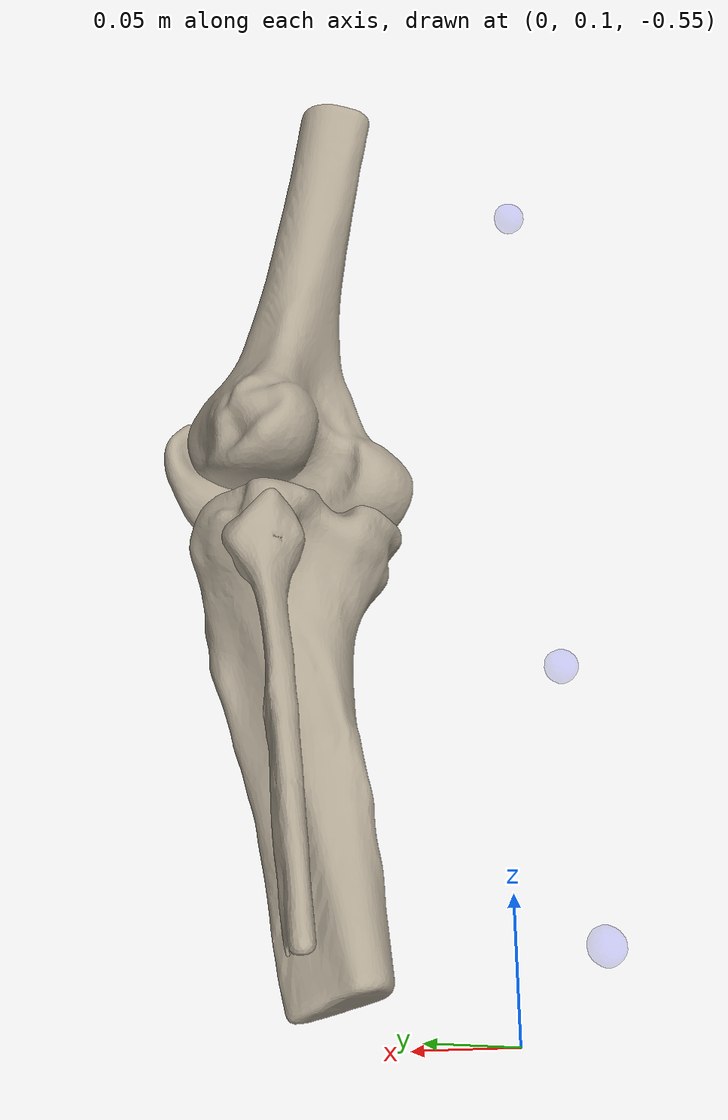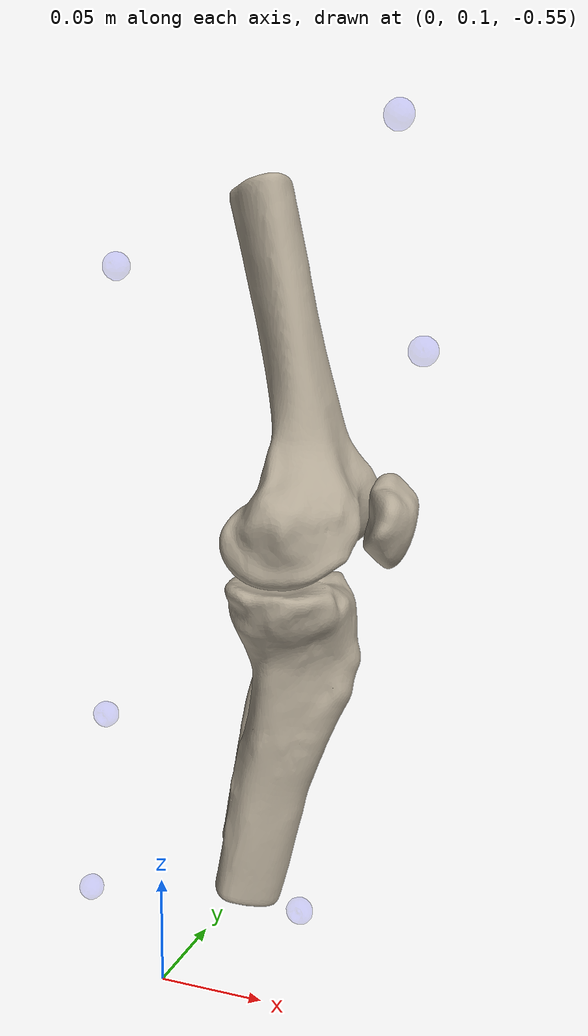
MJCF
<mujoco model="knee_model scene">
  <statistic center="-0.4 -0.4 0.2" extent="1.2"/>
  <visual>
    <headlight diffuse="0.6 0.6 0.6"  ambient="0.3 0.3 0.3" specular="0 0 0"/>
    <rgba haze="0.15 0.25 0.35 1"/>
    <global azimuth="170" elevation="-10" offheight="1024" offwidth="1024" />
    <map znear="0.01"/>
  </visual>
  <asset>
    <texture type="skybox" builtin="gradient" rgb1="0.3 0.5 0.7" rgb2="0 0 0" width="512"
          height="3072"/>
    <texture type="2d" name="groundplane" builtin="checker" mark="edge" rgb1="0.2 0.3 0.4"
          rgb2="0.1 0.2 0.3" markrgb="0.8 0.8 0.8" width="300" height="300"/>
    <material name="groundplane" texture="groundplane" texuniform="true" texrepeat="5 5"
          reflectance="0.2"/>
    <material name="bone" reflectance="1" shininess="0" specular="0" rgba="0.68 0.64 0.57 1"/>
  </asset>
  <default>
    <default class="collision">
      <geom type="mesh" contype="3" conaffinity="2" group="0" friction="0.7" solref="0.015 1" solimp="0.95 0.99 0.003" rgba="0.68 0.64 0.57 0.0"/>
    </default>
    <default class="visual">
      <geom type="mesh" contype="0" conaffinity="0" group="2" material="bone" rgba="0.68 0.64 0.57 0.6"/>
    </default>
    <default class="tracker">
      <geom type="mesh" contype="0" conaffinity="0" group="2" rgba="0.2 0.2 1 0.2"/>
    </default>
  </default>
  <worldbody>
    <light pos="0 0 1.5" dir="0 0 -1" directional="true"/>
    <geom name="floor" size="0 0 0.05" type="plane" material="groundplane"/>
  </worldbody>
  <include file="./knee_model.xml"/>
</mujoco>

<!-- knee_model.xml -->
<mujoco model="knee model">

    <visual>
        <headlight diffuse="0.6 0.6 0.6" ambient="0.3 0.3 0.3" specular="0 0 0" />
        <rgba haze="0.15 0.25 0.35 1" />
        <map znear="0.01" />
    </visual>
    <asset>
        <texture type="skybox" builtin="gradient" rgb1="0.3 0.5 0.7" rgb2="0 0 0" width="512"
            height="3072" />
        <texture type="2d" name="groundplane" builtin="checker" mark="edge" rgb1="0.2 0.3 0.4"
            rgb2="0.1 0.2 0.3" markrgb="0.8 0.8 0.8" width="300" height="300" />
        <material name="groundplane" texture="groundplane" texuniform="true" texrepeat="10 10"
            reflectance="0.3" />
        <material name="bone" reflectance="1" shininess="0" specular="0" rgba="0.68 0.64 0.57 1" />
    </asset>
    <default>
        <default class="visual">
            <geom type="mesh" contype="0" conaffinity="0" group="2" material="bone"
                rgba="0.68 0.64 0.57 1.0" />
        </default>
        <default class="tracker">
            <geom type="mesh" contype="0" conaffinity="0" group="2" rgba="0.2 0.2 1 0.2" />
        </default>
    </default>

    <compiler angle="radian" meshdir="../../assets/meshes_knee" texturedir="assets" />
    <option integrator="RK4" />

    <statistic center="-0.4 -0.4 0.2" extent="1.2" />

    <visual>
        <headlight diffuse="0.6 0.6 0.6" ambient="0.3 0.3 0.3" specular="0 0 0" />
        <rgba haze="0.15 0.25 0.35 1" />
        <map znear="0.01" />
    </visual>

    <asset>
        <mesh file="tibia.stl" name="tibia mesh" scale="0.001 0.001 0.001" />
        <mesh file="tracker tibia.stl" name="tibia tracker mesh" scale="0.001 0.001 0.001" />
        <mesh file="fibula.stl" name="fibula mesh" scale="0.001 0.001 0.001" />
        <mesh file="patella.stl" name="patella mesh" scale="0.001 0.001 0.001" />
        <mesh file="femur.stl" name="femur mesh" scale="0.001 0.001 0.001" />
        <mesh file="tracker femur.stl" name="femur tracker mesh" scale="0.001 0.001 0.001" />
    </asset>

    <worldbody>
        <body name="tibia" pos="0.0 0.0 0.0" quat="1 0 0 0">
            <geom class="visual" euler="0 0 0" mesh="tibia mesh" pos="0 0 0" type="mesh" />
            <geom class="visual" euler="0 0 0" mesh="fibula mesh" pos="0 0 0" type="mesh" />
            <geom class="tracker" euler="0 0 0" mesh="tibia tracker mesh" pos="0 0 0" type="mesh" />

            <inertial
                fullinertia="0.0008780700528212282 0.000882003973073614 0.00018810237832225102 -2.0773214139677317e-05 -0.00017248916504192767 -0.00011027907295235728"
                mass="0.4452526927806469"
                pos="0.035537882962384665 0.1738143285325765 -0.42422270065004697" />

            <body name="FEMUR" pos="0.0 0.0 0.0" quat="1 0 0 0">

                <joint armature="0.001" axis="1 0 0" limited="true" name="TIBIA_TO_FEMUR_0"
                    pos="0 0 0" range="-1 1"
                    type="hinge" />
                <joint armature="0.001" axis="0 1 0" limited="true" name="FEMUR_0_TO_FEMUR_1"
                    pos="0 0 0" range="-1 1"
                    type="hinge" />
                <joint armature="0.001" axis="0 0 1" limited="true"
                    name="FEMUR_1_TO_FEMUR_2"
                    pos="0 0 0" range="-1 1"
                    type="hinge" />

                <inertial
                    fullinertia="0.0014471221093789871 0.0013713473639596421 0.00026087716802195016 7.836769453642076e-08 0.00014400130245007057 -4.208930881634612e-05"
                    mass="0.5077506167421568"
                    pos="0.04206533826380333 0.17074902085470534 -0.2976383647493416" />

                <geom class="visual" euler="0 0 0" mesh="femur mesh" pos="0 0 0" type="mesh" />
                <geom class="tracker" euler="0 0 0" mesh="femur tracker mesh" pos="0 0 0"
                    type="mesh" />
                <geom class="visual" euler="0 0 0" mesh="patella mesh" pos="0 0 0"
                    type="mesh" />

            </body>
        </body>
    </worldbody>
</mujoco>
